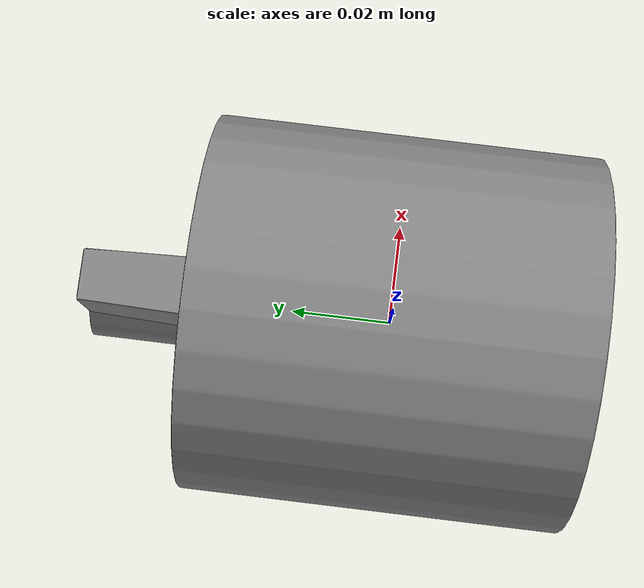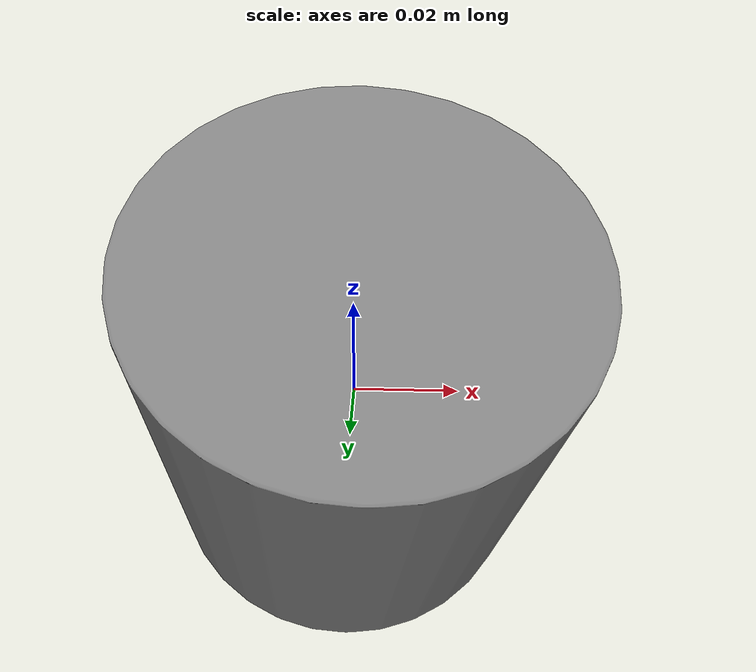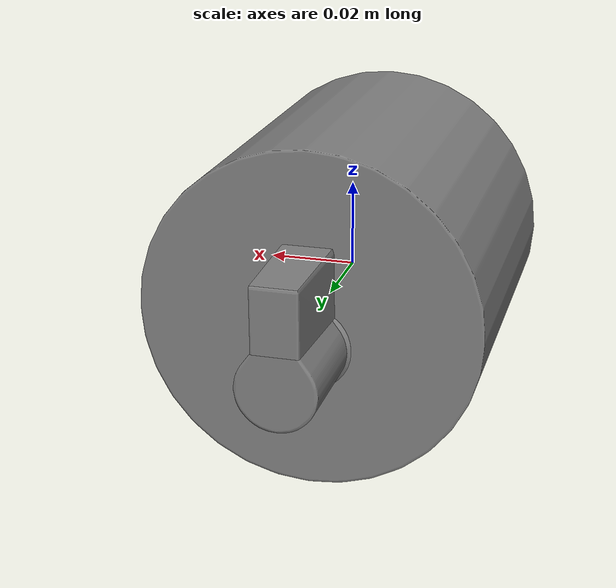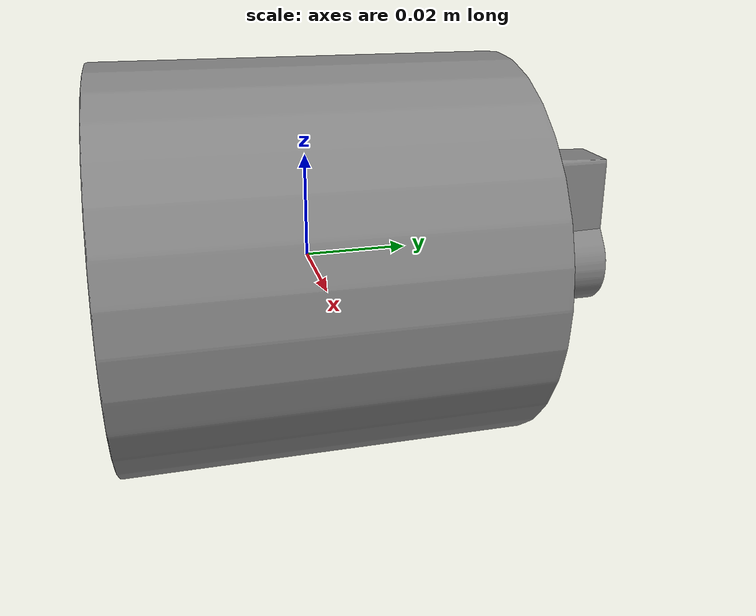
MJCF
<mujoco model="peg-hole">
	<default>
		<default class="visual">
			<geom type="mesh" contype="0" conaffinity="0"/>
		</default>
		<default class="collision">
			<geom type="mesh" rgba="0.5 0.5 0.5 1.0" density="100"/>
		</default>
	</default>
	<asset>
		<mesh name="Key_peg_visual" file="meshes/Key_cylinder_cap.obj" scale="1.00 1.00 1.00"/>
		<mesh name="Key_peg_0" file="meshes/collision_meshes/Key_cylinder_cap_decomp_0.obj" scale="1.00 1.00 1.00"/>
		<mesh name="Key_peg_1" file="meshes/collision_meshes/Key_cylinder_cap_decomp_1.obj" scale="1.00 1.00 1.00"/>
		<mesh name="Key_peg_2" file="meshes/collision_meshes/Key_cylinder_cap_decomp_2.obj" scale="1.00 1.00 1.00"/>
		<mesh name="Key_peg_3" file="meshes/collision_meshes/Key_cylinder_cap_decomp_3.obj" scale="1.00 1.00 1.00"/>
	</asset>
	<worldbody>
		<body name="Key_peg">
			<body name="object">
				<geom name="Key_peg_0" class="collision" friction="0.01 0.3 0.0001" mesh="Key_peg_0" group="0"/>
				<geom name="Key_peg_1" class="collision" friction="0.01 0.3 0.0001" mesh="Key_peg_1" group="0"/>
				<geom name="Key_peg_2" class="collision" friction="0.01 0.3 0.0001" mesh="Key_peg_2" group="0"/>
				<geom name="Key_peg_3" class="collision" friction="0.01 0.3 0.0001" mesh="Key_peg_3" group="0"/>
				<geom name="Key_peg_visual" class="visual" mesh="Key_peg_visual" group="1"/>
			</body>
			<site rgba="0 0 0 0" size="0.005" pos="0 0 0" name="bottom_site"/>
			<site rgba="0 0 0 0" size="0.005" pos="0 0 0" name="top_site"/>
			<site rgba="0 0 0 0" size="0.005" pos="0 0 0" name="horizontal_radius_site"/>
		</body>
	</worldbody>
</mujoco>
